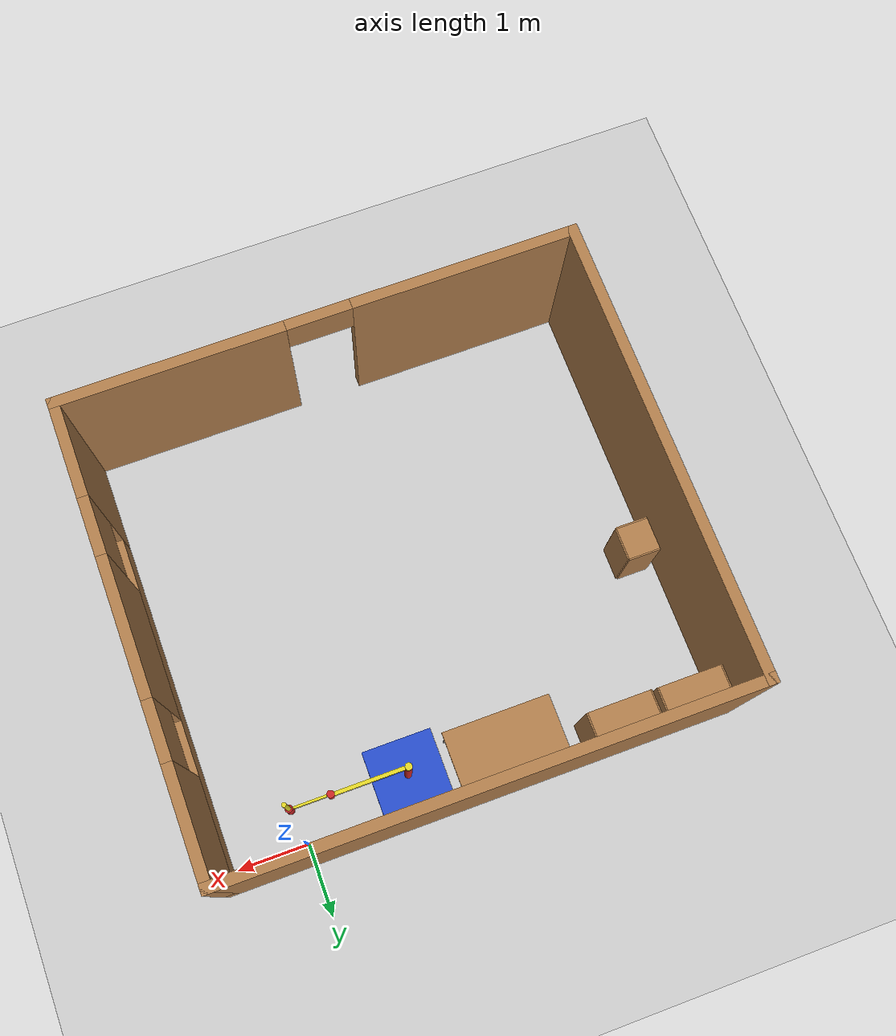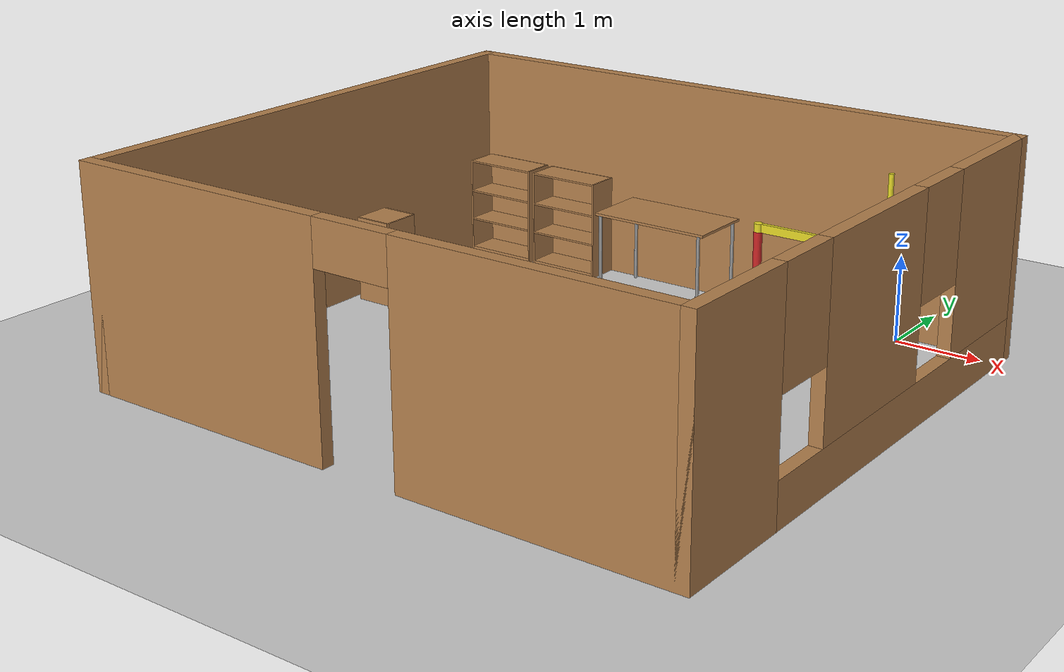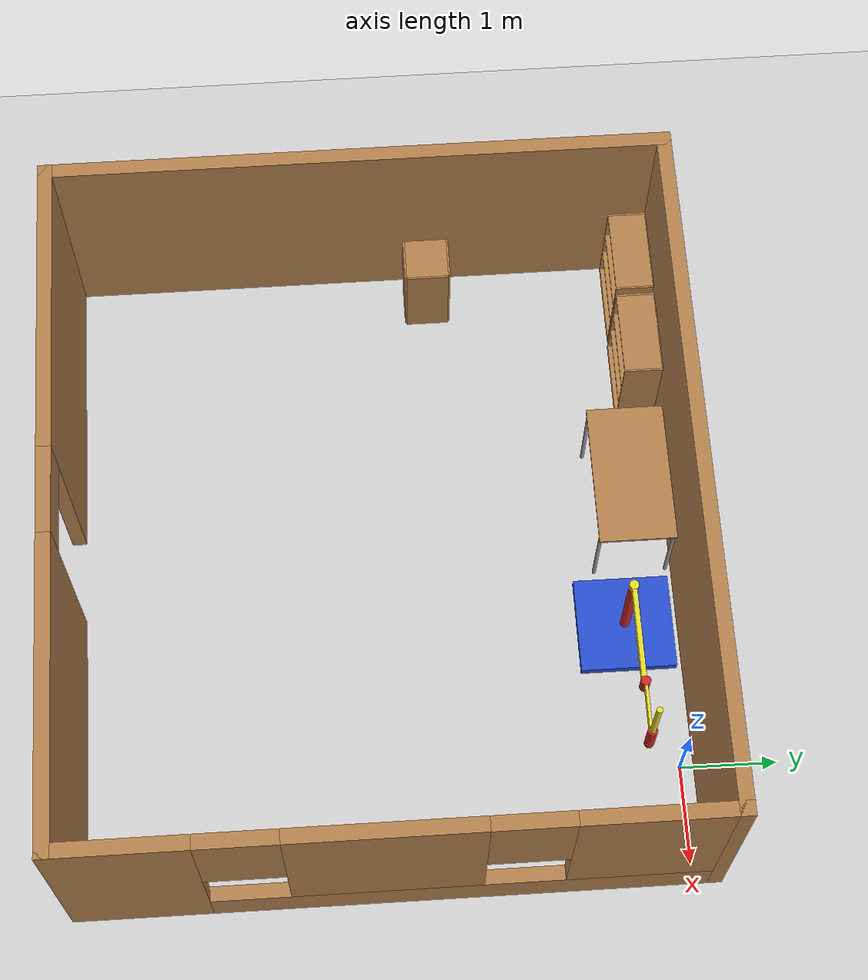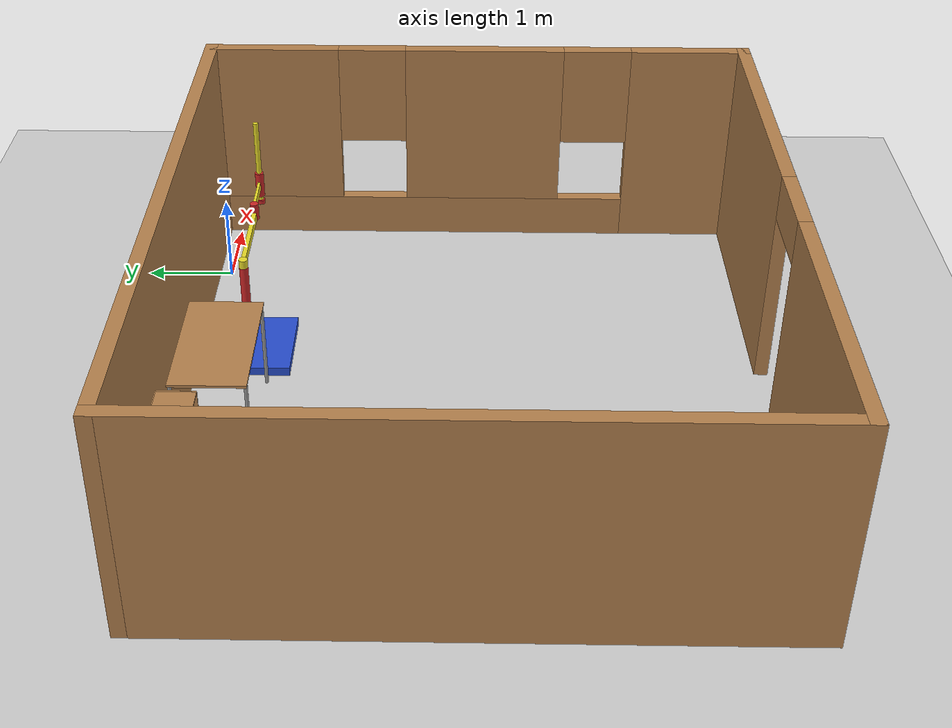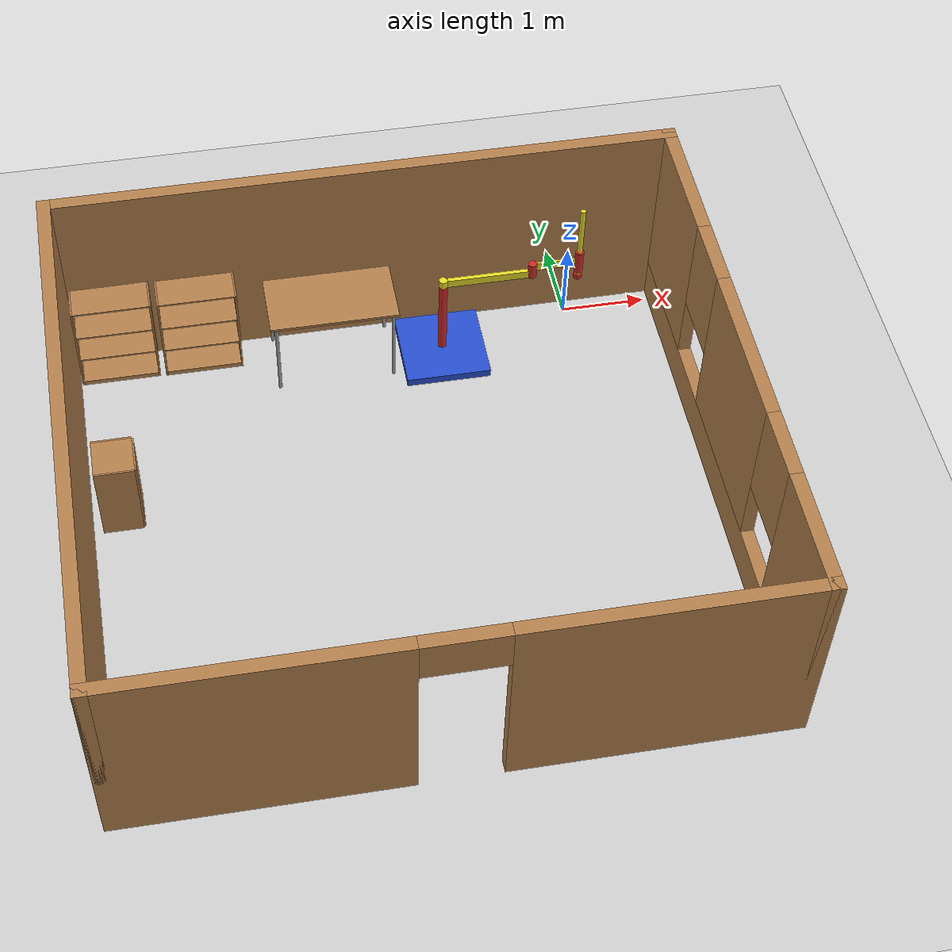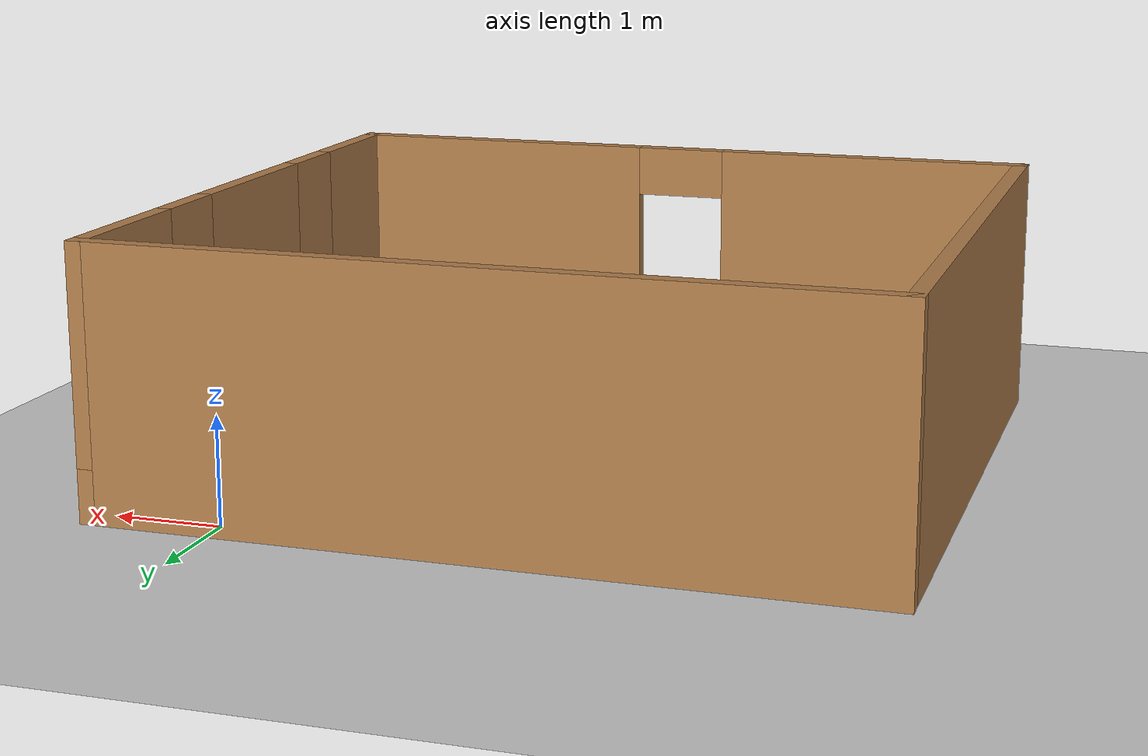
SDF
<sdf version="1.7">
 <world name="default">
  <light name="sun" type="directional">
   <pose>0 0 10 0 -0 0</pose>
   <diffuse>0.8 0.8 0.8 1</diffuse>
   <specular>0.2 0.2 0.2 1</specular>
   <attenuation>
    <range>1000</range>
    <constant>0.9</constant>
    <linear>0.01</linear>
    <quadratic>0.001</quadratic>
   </attenuation>
   <direction>-0.5 0.1 -0.9</direction>
   <spot><inner_angle>0</inner_angle><outer_angle>0</outer_angle><falloff>0</falloff></spot>
  </light>
  <model name="ground_plane">
   <static>1</static>
   <link name="link">
    <collision name="collision">
     <geometry><plane><normal>0 0 1</normal><size>100 100</size></plane></geometry>
     <surface>
      <contact><collide_bitmask>65535</collide_bitmask></contact>
      <friction><ode><mu>100</mu><mu2>50</mu2></ode></friction>
     </surface>
    </collision>
    <visual name="visual">
     <cast_shadows>0</cast_shadows>
     <geometry><plane><normal>0 0 1</normal><size>100 100</size></plane></geometry>
     <material>
      <script><uri>file://media/materials/scripts/gazebo.material</uri><name>Gazebo/Grey</name></script>
     </material>
    </visual>
   </link>
  </model>
  <gravity>0 0 -9.8</gravity>
  <magnetic_field>6e-06 2.3e-05 -4.2e-05</magnetic_field>
  <atmosphere type="adiabatic"/>
  <physics type="ode">
   <max_step_size>0.001</max_step_size>
   <real_time_factor>1</real_time_factor>
   <real_time_update_rate>1000</real_time_update_rate>
  </physics>
  <scene><ambient>0.4 0.4 0.4 1</ambient><background>0.7 0.7 0.7 1</background><shadows>1</shadows></scene>
  <spherical_coordinates>
   <surface_model>EARTH_WGS84</surface_model>
   <latitude_deg>0</latitude_deg>
   <longitude_deg>0</longitude_deg>
   <elevation>0</elevation>
   <heading_deg>0</heading_deg>
  </spherical_coordinates>
  <model name="box_room.world">
   <pose>-2.41723 -2.95977 0 0 -0 0</pose>
   <link name="Wall_2">
    <collision name="Wall_2_Collision">
     <geometry><box><size>6.5 0.15 2.5</size></box></geometry>
     <pose>0 0 1.25 0 -0 0</pose>
    </collision>
    <visual name="Wall_2_Visual">
     <pose>0 0 1.25 0 -0 0</pose>
     <geometry><box><size>6.5 0.15 2.5</size></box></geometry>
     <material>
      <script><uri>file://media/materials/scripts/gazebo.material</uri><name>Gazebo/Wood</name></script>
      <ambient>0.988235 0.913725 0.309804 1</ambient>
     </material>
     <meta><layer>0</layer></meta>
    </visual>
    <pose>-3.55 0 0 0 -0 -1.5708</pose>
   </link>
   <link name="Wall_3">
    <pose>-0 -3.175 0 0 -0 0</pose>
    <visual name="Wall_3_Visual_0">
     <pose>-2.03726 0 1.25 0 -0 0</pose>
     <geometry><box><size>3.17548 0.15 2.5</size></box></geometry>
     <material>
      <script><uri>file://media/materials/scripts/gazebo.material</uri><name>Gazebo/Wood</name></script>
      <ambient>1 1 1 1</ambient>
     </material>
     <meta><layer>0</layer></meta>
    </visual>
    <collision name="Wall_3_Collision_0">
     <geometry><box><size>3.17548 0.15 2.5</size></box></geometry>
     <pose>-2.03726 0 1.25 0 -0 0</pose>
    </collision>
    <visual name="Wall_3_Visual_1">
     <pose>2.03774 0 1.25 0 -0 0</pose>
     <geometry><box><size>3.17452 0.15 2.5</size></box></geometry>
     <material>
      <script><uri>file://media/materials/scripts/gazebo.material</uri><name>Gazebo/Wood</name></script>
      <ambient>1 1 1 1</ambient>
     </material>
     <meta><layer>0</layer></meta>
    </visual>
    <collision name="Wall_3_Collision_1">
     <geometry><box><size>3.17452 0.15 2.5</size></box></geometry>
     <pose>2.03774 0 1.25 0 -0 0</pose>
    </collision>
    <visual name="Wall_3_Visual_2">
     <pose>0.000483 0 2.25 0 -0 0</pose>
     <geometry><box><size>0.9 0.15 0.5</size></box></geometry>
     <material>
      <script><uri>file://media/materials/scripts/gazebo.material</uri><name>Gazebo/Wood</name></script>
      <ambient>1 1 1 1</ambient>
     </material>
     <meta><layer>0</layer></meta>
    </visual>
    <collision name="Wall_3_Collision_2">
     <geometry><box><size>0.9 0.15 0.5</size></box></geometry>
     <pose>0.000483 0 2.25 0 -0 0</pose>
    </collision>
   </link>
   <link name="Wall_4">
    <pose>3.55 0 0 0 -0 1.5708</pose>
    <visual name="Wall_4_Visual_0">
     <pose>-2.54619 0 1.25 0 -0 0</pose>
     <geometry><box><size>1.40762 0.15 2.5</size></box></geometry>
     <material>
      <script><uri>file://media/materials/scripts/gazebo.material</uri><name>Gazebo/Wood</name></script>
      <ambient>0.988235 0.913725 0.309804 1</ambient>
     </material>
     <meta><layer>0</layer></meta>
    </visual>
    <collision name="Wall_4_Collision_0">
     <geometry><box><size>1.40762 0.15 2.5</size></box></geometry>
     <pose>-2.54619 0 1.25 0 -0 0</pose>
    </collision>
    <visual name="Wall_4_Visual_1">
     <pose>0.703812 0 0.25 0 -0 0</pose>
     <geometry><box><size>5.09238 0.15 0.5</size></box></geometry>
     <material>
      <script><uri>file://media/materials/scripts/gazebo.material</uri><name>Gazebo/Wood</name></script>
      <ambient>0.988235 0.913725 0.309804 1</ambient>
     </material>
     <meta><layer>0</layer></meta>
    </visual>
    <collision name="Wall_4_Collision_1">
     <geometry><box><size>5.09238 0.15 0.5</size></box></geometry>
     <pose>0.703812 0 0.25 0 -0 0</pose>
    </collision>
    <visual name="Wall_4_Visual_2">
     <pose>-0.095642 0 1.5 0 -0 0</pose>
     <geometry><box><size>1.89347 0.15 2</size></box></geometry>
     <material>
      <script><uri>file://media/materials/scripts/gazebo.material</uri><name>Gazebo/Wood</name></script>
      <ambient>0.988235 0.913725 0.309804 1</ambient>
     </material>
     <meta><layer>0</layer></meta>
    </visual>
    <collision name="Wall_4_Collision_2">
     <geometry><box><size>1.89347 0.15 2</size></box></geometry>
     <pose>-0.095642 0 1.5 0 -0 0</pose>
    </collision>
    <visual name="Wall_4_Visual_3">
     <pose>2.45055 0 1.5 0 -0 0</pose>
     <geometry><box><size>1.59891 0.15 2</size></box></geometry>
     <material>
      <script><uri>file://media/materials/scripts/gazebo.material</uri><name>Gazebo/Wood</name></script>
      <ambient>0.988235 0.913725 0.309804 1</ambient>
     </material>
     <meta><layer>0</layer></meta>
    </visual>
    <collision name="Wall_4_Collision_3">
     <geometry><box><size>1.59891 0.15 2</size></box></geometry>
     <pose>2.45055 0 1.5 0 -0 0</pose>
    </collision>
    <visual name="Wall_4_Visual_4">
     <pose>-1.44238 0 1.9 0 -0 0</pose>
     <geometry><box><size>0.8 0.15 1.2</size></box></geometry>
     <material>
      <script><uri>file://media/materials/scripts/gazebo.material</uri><name>Gazebo/Wood</name></script>
      <ambient>0.988235 0.913725 0.309804 1</ambient>
     </material>
     <meta><layer>0</layer></meta>
    </visual>
    <collision name="Wall_4_Collision_4">
     <geometry><box><size>0.8 0.15 1.2</size></box></geometry>
     <pose>-1.44238 0 1.9 0 -0 0</pose>
    </collision>
    <visual name="Wall_4_Visual_5">
     <pose>1.25109 0 1.9 0 -0 0</pose>
     <geometry><box><size>0.8 0.15 1.2</size></box></geometry>
     <material>
      <script><uri>file://media/materials/scripts/gazebo.material</uri><name>Gazebo/Wood</name></script>
      <ambient>0.988235 0.913725 0.309804 1</ambient>
     </material>
     <meta><layer>0</layer></meta>
    </visual>
    <collision name="Wall_4_Collision_5">
     <geometry><box><size>0.8 0.15 1.2</size></box></geometry>
     <pose>1.25109 0 1.9 0 -0 0</pose>
    </collision>
   </link>
   <link name="Wall_5">
    <collision name="Wall_5_Collision">
     <geometry><box><size>7.25 0.15 2.5</size></box></geometry>
     <pose>0 0 1.25 0 -0 0</pose>
    </collision>
    <visual name="Wall_5_Visual">
     <pose>0 0 1.25 0 -0 0</pose>
     <geometry><box><size>7.25 0.15 2.5</size></box></geometry>
     <material>
      <script><uri>file://media/materials/scripts/gazebo.material</uri><name>Gazebo/Wood</name></script>
      <ambient>0.988235 0.913725 0.309804 1</ambient>
     </material>
     <meta><layer>0</layer></meta>
    </visual>
    <pose>-0 3.175 0 0 -0 3.14159</pose>
   </link>
   <static>1</static>
  </model>
  <light name="sun" type="directional">
   <pose>-8.65477 1.06039 10 0 -0 0</pose>
   <diffuse>0.8 0.8 0.8 1</diffuse>
   <specular>0.2 0.2 0.2 1</specular>
   <attenuation>
    <range>1000</range>
    <constant>0.9</constant>
    <linear>0.01</linear>
    <quadratic>0.001</quadratic>
   </attenuation>
   <direction>-0.5 0.1 -0.9</direction>
  </light>
  <model name="bookshelf">
   <static>1</static>
   <link name="link">
    <inertial><mass>1</mass></inertial>
    <collision name="back">
     <pose>0 0.005 0.6 0 -0 0</pose>
     <geometry><box><size>0.9 0.01 1.2</size></box></geometry>
    </collision>
    <visual name="visual1">
     <pose>0 0.005 0.6 0 -0 0</pose>
     <geometry><box><size>0.9 0.01 1.2</size></box></geometry>
     <material>
      <script><uri>file://media/materials/scripts/gazebo.material</uri><name>Gazebo/Wood</name></script>
     </material>
    </visual>
    <collision name="left_side">
     <pose>0.45 -0.195 0.6 0 -0 0</pose>
     <geometry><box><size>0.02 0.4 1.2</size></box></geometry>
    </collision>
    <visual name="visual2">
     <pose>0.45 -0.195 0.6 0 -0 0</pose>
     <geometry><box><size>0.02 0.4 1.2</size></box></geometry>
     <material>
      <script><uri>file://media/materials/scripts/gazebo.material</uri><name>Gazebo/Wood</name></script>
     </material>
    </visual>
    <collision name="right_side">
     <pose>-0.45 -0.195 0.6 0 -0 0</pose>
     <geometry><box><size>0.02 0.4 1.2</size></box></geometry>
    </collision>
    <visual name="visual3">
     <pose>-0.45 -0.195 0.6 0 -0 0</pose>
     <geometry><box><size>0.02 0.4 1.2</size></box></geometry>
     <material>
      <script><uri>file://media/materials/scripts/gazebo.material</uri><name>Gazebo/Wood</name></script>
     </material>
    </visual>
    <collision name="bottom">
     <pose>0 -0.195 0.03 0 -0 0</pose>
     <geometry><box><size>0.88 0.4 0.06</size></box></geometry>
    </collision>
    <visual name="visual4">
     <pose>0 -0.195 0.03 0 -0 0</pose>
     <geometry><box><size>0.88 0.4 0.06</size></box></geometry>
     <material>
      <script><uri>file://media/materials/scripts/gazebo.material</uri><name>Gazebo/Wood</name></script>
     </material>
    </visual>
    <collision name="top">
     <pose>0 -0.195 1.19 0 -0 0</pose>
     <geometry><box><size>0.88 0.4 0.02</size></box></geometry>
    </collision>
    <visual name="visual5">
     <pose>0 -0.195 1.19 0 -0 0</pose>
     <geometry><box><size>0.88 0.4 0.02</size></box></geometry>
     <material>
      <script><uri>file://media/materials/scripts/gazebo.material</uri><name>Gazebo/Wood</name></script>
     </material>
    </visual>
    <collision name="low_shelf">
     <pose>0 -0.195 0.43 0 -0 0</pose>
     <geometry><box><size>0.88 0.4 0.02</size></box></geometry>
    </collision>
    <visual name="visual6">
     <pose>0 -0.195 0.43 0 -0 0</pose>
     <geometry><box><size>0.88 0.4 0.02</size></box></geometry>
     <material>
      <script><uri>file://media/materials/scripts/gazebo.material</uri><name>Gazebo/Wood</name></script>
     </material>
    </visual>
    <collision name="high_shelf">
     <pose>0 -0.195 0.8 0 -0 0</pose>
     <geometry><box><size>0.88 0.4 0.02</size></box></geometry>
    </collision>
    <visual name="visual7">
     <pose>0 -0.195 0.8 0 -0 0</pose>
     <geometry><box><size>0.88 0.4 0.02</size></box></geometry>
     <material>
      <script><uri>file://media/materials/scripts/gazebo.material</uri><name>Gazebo/Wood</name></script>
     </material>
    </visual>
   </link>
   <pose>-5.41435 0.131968 0 0 -0 0</pose>
  </model>
  <model name="table">
   <static>1</static>
   <link name="link">
    <collision name="surface">
     <pose>0 0 1 0 -0 0</pose>
     <geometry><box><size>1.5 0.8 0.03</size></box></geometry>
     <surface><friction><ode><mu>0.6</mu><mu2>0.6</mu2></ode></friction></surface>
    </collision>
    <visual name="visual1">
     <pose>0 0 1 0 -0 0</pose>
     <geometry><box><size>1.5 0.8 0.03</size></box></geometry>
     <material>
      <script><uri>file://media/materials/scripts/gazebo.material</uri><name>Gazebo/Wood</name></script>
     </material>
    </visual>
    <collision name="front_left_leg">
     <pose>0.68 0.38 0.5 0 -0 0</pose>
     <geometry><cylinder><radius>0.02</radius><length>1</length></cylinder></geometry>
    </collision>
    <visual name="front_left_leg">
     <pose>0.68 0.38 0.5 0 -0 0</pose>
     <geometry><cylinder><radius>0.02</radius><length>1</length></cylinder></geometry>
     <material>
      <script><uri>file://media/materials/scripts/gazebo.material</uri><name>Gazebo/Grey</name></script>
     </material>
    </visual>
    <collision name="front_right_leg">
     <pose>0.68 -0.38 0.5 0 -0 0</pose>
     <geometry><cylinder><radius>0.02</radius><length>1</length></cylinder></geometry>
    </collision>
    <visual name="front_right_leg">
     <pose>0.68 -0.38 0.5 0 -0 0</pose>
     <geometry><cylinder><radius>0.02</radius><length>1</length></cylinder></geometry>
     <material>
      <script><uri>file://media/materials/scripts/gazebo.material</uri><name>Gazebo/Grey</name></script>
     </material>
    </visual>
    <collision name="back_right_leg">
     <pose>-0.68 -0.38 0.5 0 -0 0</pose>
     <geometry><cylinder><radius>0.02</radius><length>1</length></cylinder></geometry>
    </collision>
    <visual name="back_right_leg">
     <pose>-0.68 -0.38 0.5 0 -0 0</pose>
     <geometry><cylinder><radius>0.02</radius><length>1</length></cylinder></geometry>
     <material>
      <script><uri>file://media/materials/scripts/gazebo.material</uri><name>Gazebo/Grey</name></script>
     </material>
    </visual>
    <collision name="back_left_leg">
     <pose>-0.68 0.38 0.5 0 -0 0</pose>
     <geometry><cylinder><radius>0.02</radius><length>1</length></cylinder></geometry>
    </collision>
    <visual name="back_left_leg">
     <pose>-0.68 0.38 0.5 0 -0 0</pose>
     <geometry><cylinder><radius>0.02</radius><length>1</length></cylinder></geometry>
     <material>
      <script><uri>file://media/materials/scripts/gazebo.material</uri><name>Gazebo/Grey</name></script>
     </material>
    </visual>
   </link>
   <pose>-2.88814 -0.294582 0 0 -0 0</pose>
  </model>
  <model name="bookshelf_0">
   <static>1</static>
   <link name="link">
    <inertial><mass>1</mass></inertial>
    <collision name="back">
     <pose>0 0.005 0.6 0 -0 0</pose>
     <geometry><box><size>0.9 0.01 1.2</size></box></geometry>
    </collision>
    <visual name="visual1">
     <pose>0 0.005 0.6 0 -0 0</pose>
     <geometry><box><size>0.9 0.01 1.2</size></box></geometry>
     <material>
      <script><uri>file://media/materials/scripts/gazebo.material</uri><name>Gazebo/Wood</name></script>
     </material>
    </visual>
    <collision name="left_side">
     <pose>0.45 -0.195 0.6 0 -0 0</pose>
     <geometry><box><size>0.02 0.4 1.2</size></box></geometry>
    </collision>
    <visual name="visual2">
     <pose>0.45 -0.195 0.6 0 -0 0</pose>
     <geometry><box><size>0.02 0.4 1.2</size></box></geometry>
     <material>
      <script><uri>file://media/materials/scripts/gazebo.material</uri><name>Gazebo/Wood</name></script>
     </material>
    </visual>
    <collision name="right_side">
     <pose>-0.45 -0.195 0.6 0 -0 0</pose>
     <geometry><box><size>0.02 0.4 1.2</size></box></geometry>
    </collision>
    <visual name="visual3">
     <pose>-0.45 -0.195 0.6 0 -0 0</pose>
     <geometry><box><size>0.02 0.4 1.2</size></box></geometry>
     <material>
      <script><uri>file://media/materials/scripts/gazebo.material</uri><name>Gazebo/Wood</name></script>
     </material>
    </visual>
    <collision name="bottom">
     <pose>0 -0.195 0.03 0 -0 0</pose>
     <geometry><box><size>0.88 0.4 0.06</size></box></geometry>
    </collision>
    <visual name="visual4">
     <pose>0 -0.195 0.03 0 -0 0</pose>
     <geometry><box><size>0.88 0.4 0.06</size></box></geometry>
     <material>
      <script><uri>file://media/materials/scripts/gazebo.material</uri><name>Gazebo/Wood</name></script>
     </material>
    </visual>
    <collision name="top">
     <pose>0 -0.195 1.19 0 -0 0</pose>
     <geometry><box><size>0.88 0.4 0.02</size></box></geometry>
    </collision>
    <visual name="visual5">
     <pose>0 -0.195 1.19 0 -0 0</pose>
     <geometry><box><size>0.88 0.4 0.02</size></box></geometry>
     <material>
      <script><uri>file://media/materials/scripts/gazebo.material</uri><name>Gazebo/Wood</name></script>
     </material>
    </visual>
    <collision name="low_shelf">
     <pose>0 -0.195 0.43 0 -0 0</pose>
     <geometry><box><size>0.88 0.4 0.02</size></box></geometry>
    </collision>
    <visual name="visual6">
     <pose>0 -0.195 0.43 0 -0 0</pose>
     <geometry><box><size>0.88 0.4 0.02</size></box></geometry>
     <material>
      <script><uri>file://media/materials/scripts/gazebo.material</uri><name>Gazebo/Wood</name></script>
     </material>
    </visual>
    <collision name="high_shelf">
     <pose>0 -0.195 0.8 0 -0 0</pose>
     <geometry><box><size>0.88 0.4 0.02</size></box></geometry>
    </collision>
    <visual name="visual7">
     <pose>0 -0.195 0.8 0 -0 0</pose>
     <geometry><box><size>0.88 0.4 0.02</size></box></geometry>
     <material>
      <script><uri>file://media/materials/scripts/gazebo.material</uri><name>Gazebo/Wood</name></script>
     </material>
    </visual>
   </link>
   <pose>-4.42707 0.124249 0 0 -0 0</pose>
  </model>
  <model name="cabinet">
   <static>1</static>
   <link name="cabinet_bottom_plate">
    <inertial>
     <pose>0 0 -1 0 -0 0</pose>
     <inertia><ixx>2.05</ixx><ixy>0</ixy><ixz>0</ixz><iyy>2.05</iyy><iyz>0</iyz><izz>2.05</izz></inertia>
     <mass>25</mass>
    </inertial>
    <collision name="cabinet_bottom_plate_geom">
     <pose>0 0 0.01 0 -0 0</pose>
     <geometry><box><size>0.45 0.45 0.02</size></box></geometry>
    </collision>
    <visual name="cabinet_bottom_plate_geom_visual">
     <pose>0 0 0.01 0 -0 0</pose>
     <geometry><box><size>0.45 0.45 0.02</size></box></geometry>
     <material>
      <script><uri>file://media/materials/scripts/gazebo.material</uri><name>Gazebo/Wood</name></script>
     </material>
    </visual>
    <collision name="cabinet_bottom_plate_geom_cabinet_back_plate">
     <pose>0.235 0 0.51 0 -0 0</pose>
     <geometry><box><size>0.02 0.45 1.02</size></box></geometry>
    </collision>
    <visual name="cabinet_bottom_plate_geom_cabinet_back_plate_visual">
     <pose>0.235 0 0.51 0 -0 0</pose>
     <geometry><box><size>0.02 0.45 1.02</size></box></geometry>
     <material>
      <script><uri>file://media/materials/scripts/gazebo.material</uri><name>Gazebo/Wood</name></script>
     </material>
    </visual>
    <collision name="cabinet_bottom_plate_geom_cabinet_left_plate">
     <pose>0 0.235 0.51 0 -0 0</pose>
     <geometry><box><size>0.45 0.02 1.02</size></box></geometry>
    </collision>
    <visual name="cabinet_bottom_plate_geom_cabinet_left_plate_visual">
     <pose>0 0.235 0.51 0 -0 0</pose>
     <geometry><box><size>0.45 0.02 1.02</size></box></geometry>
     <material>
      <script><uri>file://media/materials/scripts/gazebo.material</uri><name>Gazebo/Wood</name></script>
     </material>
    </visual>
    <collision name="cabinet_bottom_plate_geom_cabinet_middle_plate">
     <pose>0 0 0.51 0 -0 0</pose>
     <geometry><box><size>0.45 0.45 0.02</size></box></geometry>
    </collision>
    <visual name="cabinet_bottom_plate_geom_cabinet_middle_plate_visual">
     <pose>0 0 0.51 0 -0 0</pose>
     <geometry><box><size>0.45 0.45 0.02</size></box></geometry>
     <material>
      <script><uri>file://media/materials/scripts/gazebo.material</uri><name>Gazebo/Wood</name></script>
     </material>
    </visual>
    <collision name="cabinet_bottom_plate_geom_cabinet_right_plate">
     <pose>0 -0.235 0.51 0 -0 0</pose>
     <geometry><box><size>0.45 0.02 1.02</size></box></geometry>
    </collision>
    <visual name="cabinet_bottom_plate_geom_cabinet_right_plate_visual">
     <pose>0 -0.235 0.51 0 -0 0</pose>
     <geometry><box><size>0.45 0.02 1.02</size></box></geometry>
     <material>
      <script><uri>file://media/materials/scripts/gazebo.material</uri><name>Gazebo/Wood</name></script>
     </material>
    </visual>
    <collision name="cabinet_bottom_plate_geom_cabinet_top_plate">
     <pose>0 0 1.01 0 -0 0</pose>
     <geometry><box><size>0.45 0.45 0.02</size></box></geometry>
    </collision>
    <visual name="cabinet_bottom_plate_geom_cabinet_top_plate_visual">
     <pose>0 0 1.01 0 -0 0</pose>
     <geometry><box><size>0.45 0.45 0.02</size></box></geometry>
     <material>
      <script><uri>file://media/materials/scripts/gazebo.material</uri><name>Gazebo/Wood</name></script>
     </material>
    </visual>
   </link>
   <pose>-5.55814 -2.25019 0 0 -0 0</pose>
  </model>
  <model name="simple_arm">
   <link name="arm_base">
    <inertial>
     <pose>0 0 0.00099 0 -0 0</pose>
     <inertia><ixx>1.11</ixx><ixy>0</ixy><ixz>0</ixz><iyy>100.11</iyy><iyz>0</iyz><izz>1.01</izz></inertia>
     <mass>101</mass>
    </inertial>
    <collision name="arm_base_geom">
     <pose>0 0 0.05 0 -0 0</pose>
     <geometry><box><size>1 1 0.1</size></box></geometry>
    </collision>
    <visual name="arm_base_geom_visual">
     <pose>0 0 0.05 0 -0 0</pose>
     <geometry><box><size>1 1 0.1</size></box></geometry>
     <material>
      <script><uri>file://media/materials/scripts/gazebo.material</uri><name>Gazebo/Blue</name></script>
     </material>
    </visual>
    <collision name="arm_base_geom_arm_trunk">
     <pose>0 0 0.6 0 -0 0</pose>
     <geometry><cylinder><radius>0.05</radius><length>1</length></cylinder></geometry>
    </collision>
    <visual name="arm_base_geom_arm_trunk_visual">
     <pose>0 0 0.6 0 -0 0</pose>
     <geometry><cylinder><radius>0.05</radius><length>1</length></cylinder></geometry>
     <material>
      <script><uri>file://media/materials/scripts/gazebo.material</uri><name>Gazebo/Red</name></script>
     </material>
    </visual>
   </link>
   <link name="arm_shoulder_pan">
    <pose>0 0 1.1 0 -0 0</pose>
    <inertial>
     <pose>0.045455 0 0 0 -0 0</pose>
     <inertia><ixx>0.011</ixx><ixy>0</ixy><ixz>0</ixz><iyy>0.0225</iyy><iyz>0</iyz><izz>0.0135</izz></inertia>
     <mass>1.1</mass>
    </inertial>
    <collision name="arm_shoulder_pan_geom">
     <pose>0 0 0.05 0 -0 0</pose>
     <geometry><cylinder><radius>0.05</radius><length>0.1</length></cylinder></geometry>
    </collision>
    <visual name="arm_shoulder_pan_geom_visual">
     <pose>0 0 0.05 0 -0 0</pose>
     <geometry><cylinder><radius>0.05</radius><length>0.1</length></cylinder></geometry>
     <material>
      <script><uri>file://media/materials/scripts/gazebo.material</uri><name>Gazebo/Yellow</name></script>
     </material>
    </visual>
    <collision name="arm_shoulder_pan_geom_arm_shoulder">
     <pose>0.55 0 0.05 0 -0 0</pose>
     <geometry><box><size>1 0.05 0.1</size></box></geometry>
    </collision>
    <visual name="arm_shoulder_pan_geom_arm_shoulder_visual">
     <pose>0.55 0 0.05 0 -0 0</pose>
     <geometry><box><size>1 0.05 0.1</size></box></geometry>
     <material>
      <script><uri>file://media/materials/scripts/gazebo.material</uri><name>Gazebo/Yellow</name></script>
     </material>
    </visual>
   </link>
   <link name="arm_elbow_pan">
    <pose>1.05 0 1.1 0 -0 0</pose>
    <inertial>
     <pose>0.0875 0 0.083333 0 -0 0</pose>
     <inertia>
      <ixx>0.031</ixx>
      <ixy>0</ixy>
      <ixz>0.005</ixz>
      <iyy>0.07275</iyy>
      <iyz>0</iyz>
      <izz>0.04475</izz>
     </inertia>
     <mass>1.2</mass>
    </inertial>
    <collision name="arm_elbow_pan_geom">
     <pose>0 0 0.1 0 -0 0</pose>
     <geometry><cylinder><radius>0.05</radius><length>0.2</length></cylinder></geometry>
    </collision>
    <visual name="arm_elbow_pan_geom_visual">
     <pose>0 0 0.1 0 -0 0</pose>
     <geometry><cylinder><radius>0.05</radius><length>0.2</length></cylinder></geometry>
     <material>
      <script><uri>file://media/materials/scripts/gazebo.material</uri><name>Gazebo/Red</name></script>
     </material>
    </visual>
    <collision name="arm_elbow_pan_geom_arm_elbow">
     <pose>0.3 0 0.15 0 -0 0</pose>
     <geometry><box><size>0.5 0.03 0.1</size></box></geometry>
    </collision>
    <visual name="arm_elbow_pan_geom_arm_elbow_visual">
     <pose>0.3 0 0.15 0 -0 0</pose>
     <geometry><box><size>0.5 0.03 0.1</size></box></geometry>
     <material>
      <script><uri>file://media/materials/scripts/gazebo.material</uri><name>Gazebo/Yellow</name></script>
     </material>
    </visual>
    <collision name="arm_elbow_pan_geom_arm_wrist">
     <pose>0.55 0 0.15 0 -0 0</pose>
     <geometry><cylinder><radius>0.05</radius><length>0.3</length></cylinder></geometry>
    </collision>
    <visual name="arm_elbow_pan_geom_arm_wrist_visual">
     <pose>0.55 0 0.15 0 -0 0</pose>
     <geometry><cylinder><radius>0.05</radius><length>0.3</length></cylinder></geometry>
     <material>
      <script><uri>file://media/materials/scripts/gazebo.material</uri><name>Gazebo/Red</name></script>
     </material>
    </visual>
   </link>
   <link name="arm_wrist_lift">
    <pose>1.6 0 1.05 0 -0 0</pose>
    <inertial>
     <inertia><ixx>0.01</ixx><ixy>0</ixy><ixz>0</ixz><iyy>0.01</iyy><iyz>0</iyz><izz>0.001</izz></inertia>
     <mass>0.1</mass>
    </inertial>
    <collision name="arm_wrist_lift_geom">
     <pose>0 0 0.5 0 -0 0</pose>
     <geometry><cylinder><radius>0.03</radius><length>1</length></cylinder></geometry>
    </collision>
    <visual name="arm_wrist_lift_geom_visual">
     <pose>0 0 0.5 0 -0 0</pose>
     <geometry><cylinder><radius>0.03</radius><length>1</length></cylinder></geometry>
     <material>
      <script><uri>file://media/materials/scripts/gazebo.material</uri><name>Gazebo/Yellow</name></script>
     </material>
    </visual>
   </link>
   <link name="arm_wrist_roll">
    <pose>1.6 0 1 0 -0 0</pose>
    <inertial>
     <inertia><ixx>0.01</ixx><ixy>0</ixy><ixz>0</ixz><iyy>0.01</iyy><iyz>0</iyz><izz>0.001</izz></inertia>
     <mass>0.1</mass>
    </inertial>
    <collision name="arm_wrist_roll_geom">
     <pose>0 0 0.025 0 -0 0</pose>
     <geometry><cylinder><radius>0.05</radius><length>0.05</length></cylinder></geometry>
    </collision>
    <visual name="arm_wrist_roll_geom_visual">
     <pose>0 0 0.025 0 -0 0</pose>
     <geometry><cylinder><radius>0.05</radius><length>0.05</length></cylinder></geometry>
     <material>
      <script><uri>file://media/materials/scripts/gazebo.material</uri><name>Gazebo/Red</name></script>
     </material>
    </visual>
   </link>
   <joint name="arm_shoulder_pan_joint" type="revolute">
    <parent>arm_base</parent>
    <child>arm_shoulder_pan</child>
    <axis>
     <dynamics>
      <damping>1</damping>
      <friction>0</friction>
      <spring_reference>0</spring_reference>
      <spring_stiffness>0</spring_stiffness>
     </dynamics>
     <xyz expressed_in="__model__">0 0 1</xyz>
     <limit><lower>-1e+16</lower><upper>1e+16</upper></limit>
    </axis>
   </joint>
   <joint name="arm_elbow_pan_joint" type="revolute">
    <parent>arm_shoulder_pan</parent>
    <child>arm_elbow_pan</child>
    <axis>
     <dynamics>
      <damping>1</damping>
      <friction>0</friction>
      <spring_reference>0</spring_reference>
      <spring_stiffness>0</spring_stiffness>
     </dynamics>
     <xyz expressed_in="__model__">0 0 1</xyz>
     <limit><lower>-1e+16</lower><upper>1e+16</upper></limit>
    </axis>
   </joint>
   <joint name="arm_wrist_lift_joint" type="prismatic">
    <parent>arm_elbow_pan</parent>
    <child>arm_wrist_lift</child>
    <axis>
     <dynamics>
      <damping>1</damping>
      <friction>0</friction>
      <spring_reference>0</spring_reference>
      <spring_stiffness>0</spring_stiffness>
     </dynamics>
     <limit><lower>-0.8</lower><upper>0.1</upper></limit>
     <xyz expressed_in="__model__">0 0 1</xyz>
    </axis>
   </joint>
   <joint name="arm_wrist_roll_joint" type="revolute">
    <parent>arm_wrist_lift</parent>
    <child>arm_wrist_roll</child>
    <axis>
     <dynamics>
      <damping>1</damping>
      <friction>0</friction>
      <spring_reference>0</spring_reference>
      <spring_stiffness>0</spring_stiffness>
     </dynamics>
     <limit><lower>-2.99999</lower><upper>2.99999</upper></limit>
     <xyz expressed_in="__model__">0 0 1</xyz>
    </axis>
   </joint>
   <pose>-1.57962 -0.414105 -0 0 0 -0.00143</pose>
  </model>
 </world>
</sdf>
